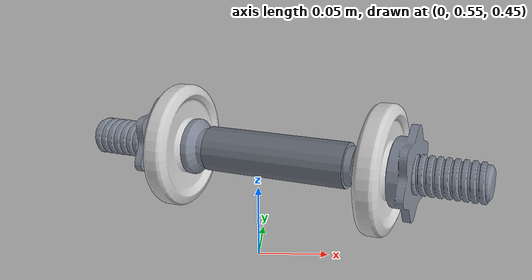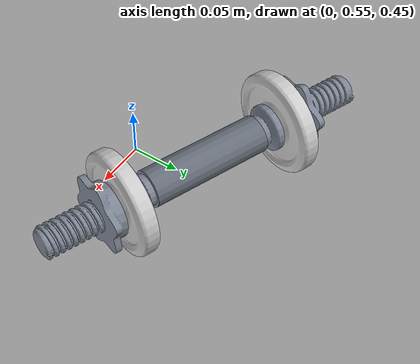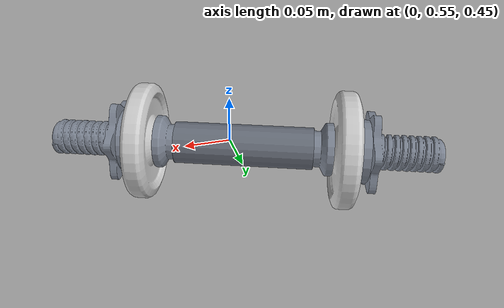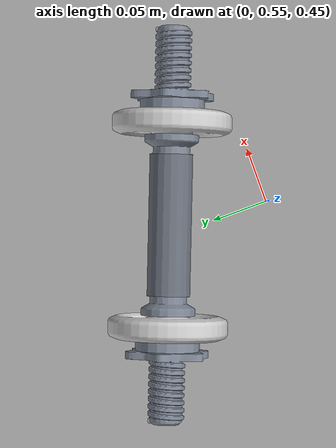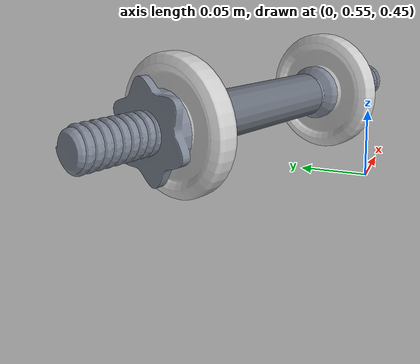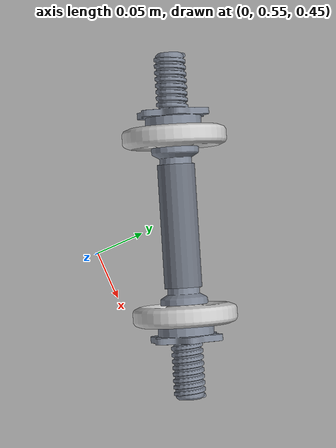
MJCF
<mujoco model="weight_1">
  <compiler angle="radian" meshdir="assets" texturedir="assets" autolimits="true"/>
  <default>
    <default class="visual">
      <geom group="2" type="mesh" contype="0" conaffinity="0"/>
    </default>
    <default class="collision">
      <geom group="3" type="mesh"  solimp="0.95 0.99 0.001" solref="0.004 1" friction="1.0 0.005 0.0001"/>
    </default>
  </default>
  <asset>
    <material name="Metal_black" specular="0.5" shininess="0.36" rgba="0.800000 0.800000 0.800000 1.000000"/>
    <material name="Stainless_Steel" specular="0.5" shininess="0.7225" rgba="0.492784 0.524263 0.580810 1.000000"/>
    <material name="Stainless_Steel_grip" specular="0.5" shininess="0.49" rgba="0.407240 0.433089 0.479510 1.000000"/>
    <mesh file="weight_1_0.obj" scale="0.25 0.25 0.25"/>
    <mesh file="weight_1_1.obj" scale="0.25 0.25 0.25"/>
    <mesh file="weight_1_2.obj" scale="0.25 0.25 0.25"/>
    <mesh file="weight_1_collision_0.obj" scale="0.25 0.25 0.25"/>
    <mesh file="weight_1_collision_1.obj" scale="0.25 0.25 0.25"/>
    <mesh file="weight_1_collision_2.obj" scale="0.25 0.25 0.25"/>
    <mesh file="weight_1_collision_3.obj" scale="0.25 0.25 0.25"/>
    <mesh file="weight_1_collision_4.obj" scale="0.25 0.25 0.25"/>
    <mesh file="weight_1_collision_5.obj" scale="0.25 0.25 0.25"/>
    <mesh file="weight_1_collision_6.obj" scale="0.25 0.25 0.25"/>
    <mesh file="weight_1_collision_7.obj" scale="0.25 0.25 0.25"/>
    <mesh file="weight_1_collision_8.obj" scale="0.25 0.25 0.25"/>
    <mesh file="weight_1_collision_9.obj" scale="0.25 0.25 0.25"/>
    <mesh file="weight_1_collision_10.obj" scale="0.25 0.25 0.25"/>
    <mesh file="weight_1_collision_11.obj" scale="0.25 0.25 0.25"/>
    <mesh file="weight_1_collision_12.obj" scale="0.25 0.25 0.25"/>
    <mesh file="weight_1_collision_13.obj" scale="0.25 0.25 0.25"/>
    <mesh file="weight_1_collision_14.obj" scale="0.25 0.25 0.25"/>
    <mesh file="weight_1_collision_15.obj" scale="0.25 0.25 0.25"/>
    <mesh file="weight_1_collision_16.obj" scale="0.25 0.25 0.25"/>
    <mesh file="weight_1_collision_17.obj" scale="0.25 0.25 0.25"/>
    <mesh file="weight_1_collision_18.obj" scale="0.25 0.25 0.25"/>
    <mesh file="weight_1_collision_19.obj" scale="0.25 0.25 0.25"/>
    <mesh file="weight_1_collision_20.obj" scale="0.25 0.25 0.25"/>
    <mesh file="weight_1_collision_21.obj" scale="0.25 0.25 0.25"/>
    <mesh file="weight_1_collision_22.obj" scale="0.25 0.25 0.25"/>
    <mesh file="weight_1_collision_23.obj" scale="0.25 0.25 0.25"/>
    <mesh file="weight_1_collision_24.obj" scale="0.25 0.25 0.25"/>
    <mesh file="weight_1_collision_25.obj" scale="0.25 0.25 0.25"/>
    <mesh file="weight_1_collision_26.obj" scale="0.25 0.25 0.25"/>
    <mesh file="weight_1_collision_27.obj" scale="0.25 0.25 0.25"/>
    <mesh file="weight_1_collision_28.obj" scale="0.25 0.25 0.25"/>
    <mesh file="weight_1_collision_29.obj" scale="0.25 0.25 0.25"/>
    <mesh file="weight_1_collision_30.obj" scale="0.25 0.25 0.25"/>
    <mesh file="weight_1_collision_31.obj" scale="0.25 0.25 0.25"/>
    <mesh file="weight_1_collision_32.obj" scale="0.25 0.25 0.25"/>
    <mesh file="weight_1_collision_33.obj" scale="0.25 0.25 0.25"/>
    <mesh file="weight_1_collision_34.obj" scale="0.25 0.25 0.25"/>
  </asset>
  <worldbody>
    <body name="weight_1">
      <geom mesh="weight_1_0" material="Stainless_Steel_grip" class="visual"/>
      <geom mesh="weight_1_1" material="Metal_black" class="visual"/>
      <geom mesh="weight_1_2" material="Stainless_Steel" class="visual"/>
      <geom mesh="weight_1_collision_0" rgba="0.4622720650217753 0.8188610979609771 0.8337977611393325 1" class="collision"/>
      <geom mesh="weight_1_collision_1" rgba="0.42623827010276427 0.8603151569396973 0.32533290491750155 1" class="collision"/>
      <geom mesh="weight_1_collision_2" rgba="0.5998898174975007 0.9747662280884737 0.9377904788936601 1" class="collision"/>
      <geom mesh="weight_1_collision_3" rgba="0.7912269778453481 0.32100497857497157 0.0732270210753515 1" class="collision"/>
      <geom mesh="weight_1_collision_4" rgba="0.04637167155863042 0.3358971169332279 0.28106833039279544 1" class="collision"/>
      <geom mesh="weight_1_collision_5" rgba="0.5896865235430246 0.0025009480996224243 0.9256286145572973 1" class="collision"/>
      <geom mesh="weight_1_collision_6" rgba="0.6489542654356892 0.8363326088669382 0.48932017849529785 1" class="collision"/>
      <geom mesh="weight_1_collision_7" rgba="0.03461701302023579 0.3493566571902291 0.613487443405913 1" class="collision"/>
      <geom mesh="weight_1_collision_8" rgba="0.36694421469460436 0.892217178432551 0.4544002431292048 1" class="collision"/>
      <geom mesh="weight_1_collision_9" rgba="0.16597746732789798 0.15333286204395125 0.5626906491601563 1" class="collision"/>
      <geom mesh="weight_1_collision_10" rgba="0.5849016386655578 0.40269025274786785 0.9849744827455695 1" class="collision"/>
      <geom mesh="weight_1_collision_11" rgba="0.21295017823130935 0.796470297978945 0.15261024728117556 1" class="collision"/>
      <geom mesh="weight_1_collision_12" rgba="0.7098031531632674 0.591140056962319 0.43585983016028174 1" class="collision"/>
      <geom mesh="weight_1_collision_13" rgba="0.804417265246635 0.9504078458110118 0.9258648446079739 1" class="collision"/>
      <geom mesh="weight_1_collision_14" rgba="0.5874894723117259 0.6825415463771897 0.6043462191501323 1" class="collision"/>
      <geom mesh="weight_1_collision_15" rgba="0.5582773677331458 0.29842242274587494 0.7505504222602156 1" class="collision"/>
      <geom mesh="weight_1_collision_16" rgba="0.4015542592824899 0.8225704819155035 0.8490253147682824 1" class="collision"/>
      <geom mesh="weight_1_collision_17" rgba="0.22419876077175438 0.2710630919042598 0.6194261791694654 1" class="collision"/>
      <geom mesh="weight_1_collision_18" rgba="0.751953262838802 0.42022992298573925 0.5021637985273327 1" class="collision"/>
      <geom mesh="weight_1_collision_19" rgba="0.8060379676000841 0.3756914378857231 0.15838169998767127 1" class="collision"/>
      <geom mesh="weight_1_collision_20" rgba="0.3254281625247746 0.2596934668432008 0.8644552228298135 1" class="collision"/>
      <geom mesh="weight_1_collision_21" rgba="0.7967184636748939 0.6757692442400044 0.9060492841669329 1" class="collision"/>
      <geom mesh="weight_1_collision_22" rgba="0.4249638177245141 0.8737297167804728 0.6177847131885097 1" class="collision"/>
      <geom mesh="weight_1_collision_23" rgba="0.4254100782189848 0.17270592300597598 0.902687200401323 1" class="collision"/>
      <geom mesh="weight_1_collision_24" rgba="0.9672206467280378 0.36469433381557703 0.8026557739760009 1" class="collision"/>
      <geom mesh="weight_1_collision_25" rgba="0.06653265715765888 0.22137763628228802 0.636758221381019 1" class="collision"/>
      <geom mesh="weight_1_collision_26" rgba="0.9877908936486313 0.5761584050151716 0.027787569167393777 1" class="collision"/>
      <geom mesh="weight_1_collision_27" rgba="0.8523631188601534 0.17234386762373066 0.33207031653840646 1" class="collision"/>
      <geom mesh="weight_1_collision_28" rgba="0.8096303155925388 0.8524390200449871 0.3628082662589509 1" class="collision"/>
      <geom mesh="weight_1_collision_29" rgba="0.45375528999469694 0.842570003188072 0.47604961025777803 1" class="collision"/>
      <geom mesh="weight_1_collision_30" rgba="0.5718905588360909 0.735112189127269 0.4301288372656529 1" class="collision"/>
      <geom mesh="weight_1_collision_31" rgba="0.9061593528500266 0.5007266456861083 0.5284412423998092 1" class="collision"/>
      <geom mesh="weight_1_collision_32" rgba="0.39888749698833625 0.47791315414968194 0.5283427145323716 1" class="collision"/>
      <geom mesh="weight_1_collision_33" rgba="0.22047269574061157 0.9484323189713488 0.5819705045723099 1" class="collision"/>
      <geom mesh="weight_1_collision_34" rgba="0.3692599635590461 0.3179186684853529 0.734080741521506 1" class="collision"/>
    </body>
  </worldbody>
</mujoco>
